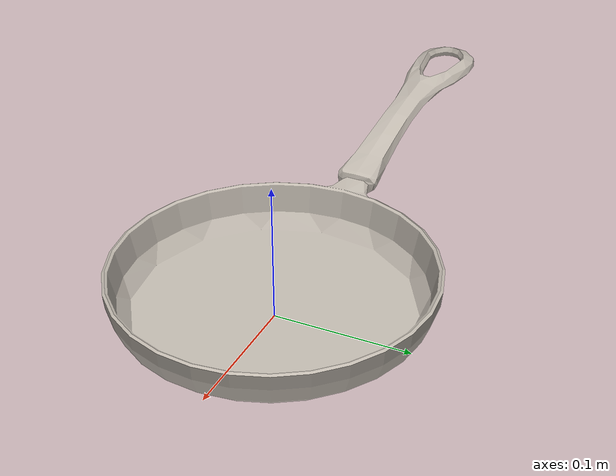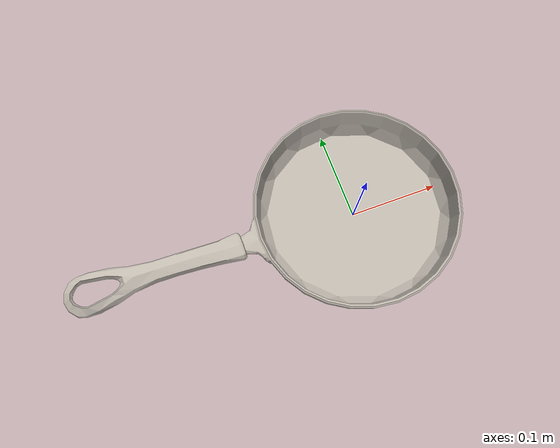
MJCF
<?xml version="1.0"?>
<mujoco model="pan">
  <compiler angle="radian" meshdir="assets/" texturedir="assets/"/>
  <default class="main">
    <default class="pan">
      <default class="visual">
        <geom type="mesh" contype="0" conaffinity="0" group="2"/>
      </default>
      <default class="collision">
        <geom type="mesh" group="3" solref="0.004" solimp="0.95 0.98"/>
      </default>
      <default class="collision_wall">
        <geom size="0.004 0.028 0.018" type="box" group="3" solref="0.004" solimp="0.95 0.98"/>
      </default>
    </default>
  </default>
  <asset>
    <texture type="2d" name="pan" file="pan_basecolor.png"/>
    <material name="pan" texture="pan" specular="0.2" shininess="0.2"/>
    <mesh name="pan" file="pan.obj"/>
    <mesh name="pan_collision_handle_001" file="pan_collision_handle_001.obj"/>
    <mesh name="pan_collision_handle_002" file="pan_collision_handle_002.obj"/>
  </asset>
  <worldbody>
    <body name="pan" childclass="pan">
      <geom name="mesh" class="visual" quat="0.707105 0.707108 0 0" mass="0.5" material="pan" mesh="pan"/>
      <geom name="collider_handle_1" class="collision" quat="0.707105 0.707108 0 0" mass="0" mesh="pan_collision_handle_001"/>
      <geom name="collider_handle_2" class="collision" quat="0.707105 0.707108 0 0" mass="0" mesh="pan_collision_handle_002"/>
      <geom class="collision" size="0.112 0.003" pos="0 0 0.003" type="cylinder" mass="0"/>
      <geom class="collision_wall" pos="-0.105 0 0.02" mass="0"/>
      <geom class="collision_wall" pos="-0.0909116 -0.0525365 0.02" quat="0.965874 0 0 0.259013" mass="0"/>
      <geom class="collision_wall" pos="-0.052427 -0.0909748 0.02" quat="0.865825 0 0 0.500347" mass="0"/>
      <geom class="collision_wall" pos="0.000126386 -0.105 0.02" quat="0.706681 0 0 0.707532" mass="0"/>
      <geom class="collision_wall" pos="0.0526459 -0.0908483 0.02" quat="0.499305 0 0 0.866426" mass="0"/>
      <geom class="collision_wall" pos="0.0910378 -0.0523175 0.02" quat="0.25785 0 0 0.966185" mass="0"/>
      <geom class="collision_wall" pos="0.105 0.000252771 0.02" quat="-0.00120367 0 0 0.999999" mass="0"/>
      <geom class="collision_wall" pos="0.0907849 0.0527552 0.02" quat="-0.260175 0 0 0.965561" mass="0"/>
      <geom class="collision_wall" pos="0.0522079 0.0911007 0.02" quat="-0.501389 0 0 0.865222" mass="0"/>
      <geom class="collision_wall" pos="-0.000379156 0.104999 0.02" quat="-0.708382 0 0 0.705829" mass="0"/>
      <geom class="collision_wall" pos="-0.0528644 0.0907213 0.02" quat="-0.867027 0 0 0.498262" mass="0"/>
      <geom class="collision_wall" pos="-0.0911635 0.0520982 0.02" quat="-0.966495 0 0 0.256687" mass="0"/>
    </body>
  </worldbody>
</mujoco>
